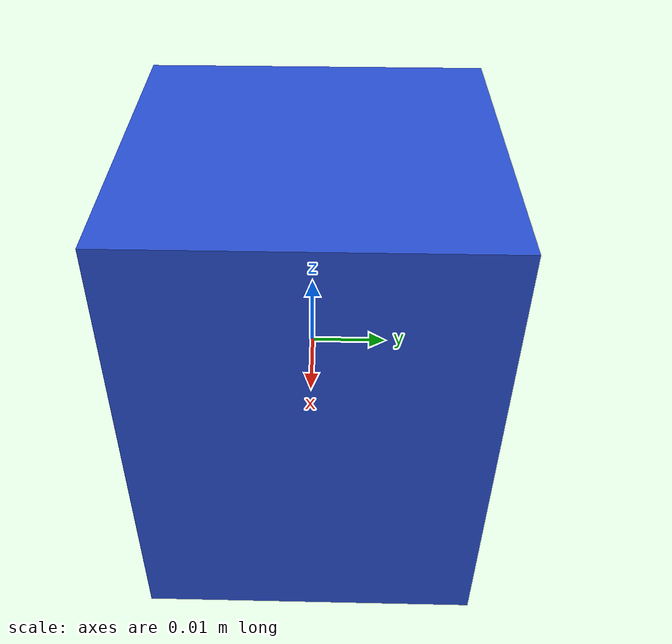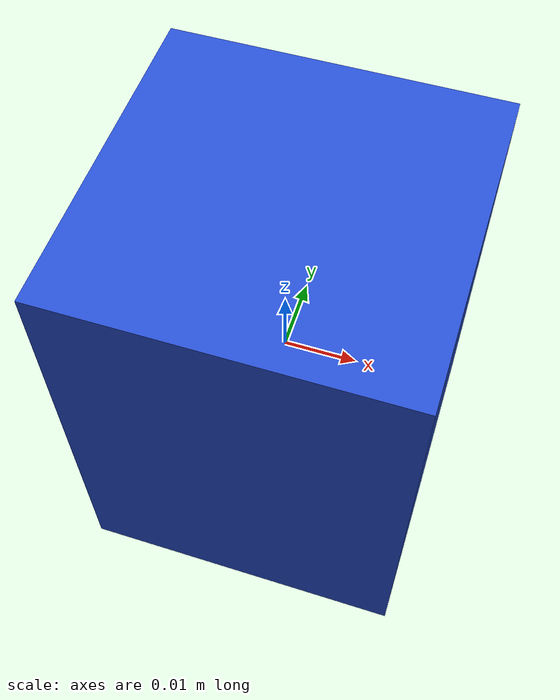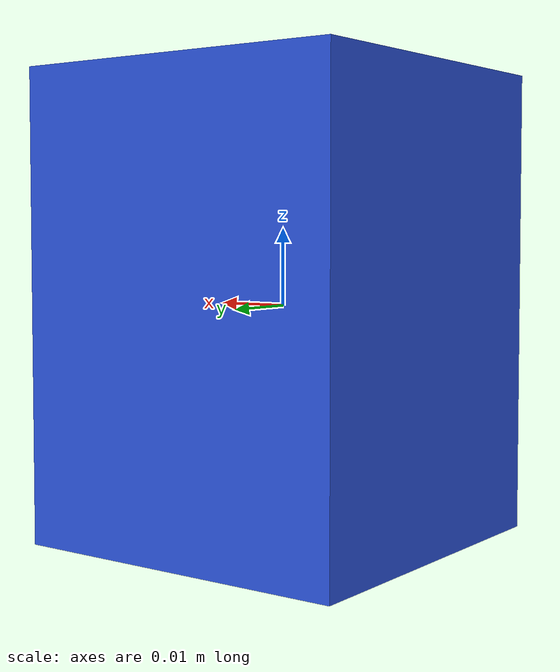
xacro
<?xml version="1.0"?>
<robot xmlns:xacro="http://www.ros.org/wiki/xacro" name="square_peg">

<xacro:property name="x_dim" value="0.045" />
<xacro:property name="y_dim" value="0.045" />
<xacro:property name="z_dim" value="0.06" />

<!-- macro for making default inertial mass-->
<xacro:macro name="default_inertial" params="mass">
    <inertial>
            <mass value="${mass}" />
            <inertia ixx="${1.0*mass}" ixy="0.0" ixz="0.0"
                 iyy="${1.0*mass}" iyz="0.0"
                 izz="${1.0*mass}" />
    </inertial>
</xacro:macro>

<!-- macro for making default box-->
<xacro:macro name="rectangle" params="x_dim y_dim z_dim">
    <visual>
        <geometry>
            <box size="${x_dim} ${y_dim} ${z_dim}"/>
        </geometry>
        <material name="blue"/>
    </visual>
    <collision>
        <geometry>
            <box size="${x_dim} ${y_dim} ${z_dim}"/>
        </geometry>
    </collision>
    <xacro:default_inertial mass="0.01"/>
    <contact_coefficients mu="0.0" kp="1000" kd="1" />
    <!-- A bunch of stuff cut -->
</xacro:macro>

    <link name="base_link">
        <xacro:rectangle x_dim="${x_dim}" y_dim="${y_dim}" z_dim="${z_dim}"/>
    </link>

</robot>
